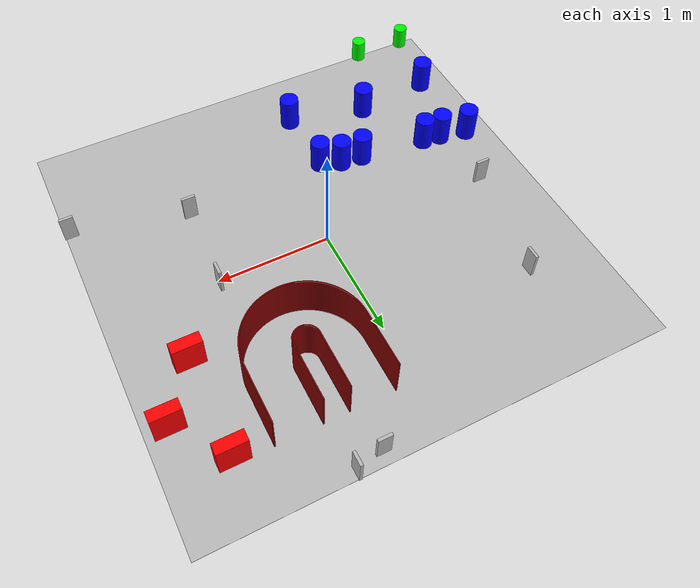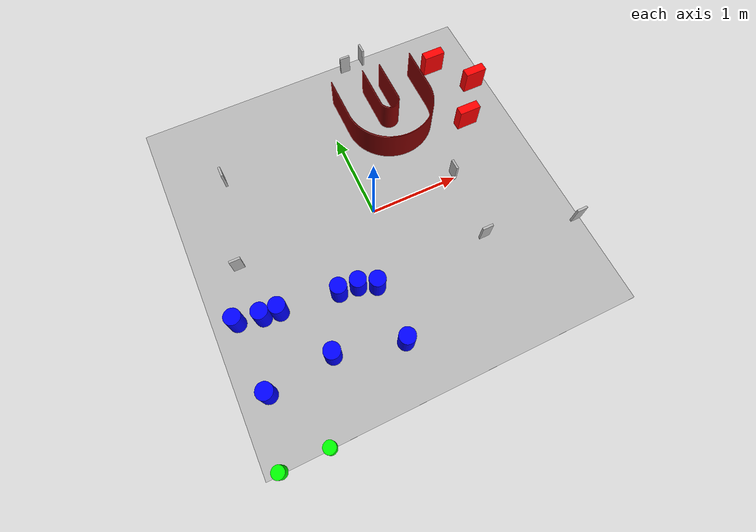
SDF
<sdf version="1.7">
 <world name="default">
  <scene>
   <ambient>0 0 0 1</ambient>
   <shadows>0</shadows>
   <grid>0</grid>
   <background>0.7 0.7 0.7 1</background>
  </scene>
  <model name="course">
   <static>1</static>
   <link name="course_link">
    <collision name="course_collision">
     <geometry><plane><normal>0 0 1</normal><size>4 4</size></plane></geometry>
     <surface><friction><ode><mu>100</mu><mu2>50</mu2></ode></friction></surface>
    </collision>
    <visual name="course_visual">
     <cast_shadows>0</cast_shadows>
     <geometry><plane><normal>0 0 1</normal><size>4 4</size></plane></geometry>
     <material>
      <script>
       <uri>model://course/materials/scripts</uri>
       <uri>model://course/materials/textures</uri>
       <name>course</name>
      </script>
     </material>
    </visual>
   </link>
   <pose>0 0 0 0 0 -3.14</pose>
  </model>
  <model name="traffic_parking">
   <static>1</static>
   <link name="box">
    <collision name="collision"><geometry><box><size>0.12 0.025 0.25</size></box></geometry></collision>
    <visual name="visual">
     <geometry><box><size>0.12 0.025 0.25</size></box></geometry>
     <material>
      <script>
       <uri>model://traffic_parking/materials/scripts</uri>
       <uri>model://traffic_parking/materials/textures</uri>
       <name>traffic_parking</name>
      </script>
     </material>
    </visual>
   </link>
   <pose>0.74 1.95 0.13 0 0 -1.57</pose>
  </model>
  <model name="traffic_tunnel">
   <pose>-1.544 0.006774 0.125 -2e-06 -5e-06 0.000138</pose>
   <link name="box">
    <collision name="collision"><geometry><box><size>0.12 0.025 0.25</size></box></geometry></collision>
    <visual name="visual">
     <geometry><box><size>0.12 0.025 0.25</size></box></geometry>
     <material>
      <script>
       <uri>model://traffic_tunnel/materials/scripts</uri>
       <uri>model://traffic_tunnel/materials/textures</uri>
       <name>traffic_tunnel</name>
      </script>
     </material>
    </visual>
    <inertial>
     <inertia><ixx>1</ixx><ixy>0</ixy><ixz>0</ixz><iyy>1</iyy><iyz>0</iyz><izz>1</izz></inertia>
     <mass>1</mass>
    </inertial>
   </link>
  </model>
  <model name="traffic_stop">
   <static>1</static>
   <link name="box">
    <collision name="collision"><geometry><box><size>0.12 0.025 0.25</size></box></geometry></collision>
    <visual name="visual">
     <geometry><box><size>0.12 0.025 0.25</size></box></geometry>
     <material>
      <script>
       <uri>model://traffic_stop/materials/scripts</uri>
       <uri>model://traffic_stop/materials/textures</uri>
       <name>traffic_stop</name>
      </script>
     </material>
    </visual>
   </link>
   <pose>-1.35 1.04 0.125 0 0 -1.57</pose>
  </model>
  <model name="traffic_pl_left">
   <static>1</static>
   <link name="box">
    <collision name="collision"><geometry><box><size>0.12 0.025 0.25</size></box></geometry></collision>
    <visual name="visual">
     <geometry><box><size>0.12 0.025 0.25</size></box></geometry>
     <material>
      <script>
       <uri>model://traffic_pl_left/materials/scripts</uri>
       <uri>model://traffic_pl_left/materials/textures</uri>
       <name>traffic_pl_left</name>
      </script>
     </material>
    </visual>
   </link>
   <pose>0.5 1.9 0.13 0 -0 0</pose>
  </model>
  <model name="traffic_construction">
   <static>1</static>
   <link name="box">
    <collision name="collision"><geometry><box><size>0.12 0.025 0.25</size></box></geometry></collision>
    <visual name="visual">
     <geometry><box><size>0.12 0.025 0.25</size></box></geometry>
     <material>
      <script>
       <uri>model://traffic_construction/materials/scripts</uri>
       <uri>model://traffic_construction/materials/textures</uri>
       <name>traffic_construction</name>
      </script>
     </material>
    </visual>
   </link>
   <pose>1 0.04 0.125 0 0 -1.57</pose>
  </model>
  <model name="traffic_intersection">
   <static>1</static>
   <link name="box">
    <collision name="collision"><geometry><box><size>0.12 0.025 0.25</size></box></geometry></collision>
    <visual name="visual">
     <geometry><box><size>0.12 0.025 0.25</size></box></geometry>
     <material>
      <script>
       <uri>model://traffic_intersection/materials/scripts</uri>
       <uri>model://traffic_intersection/materials/textures</uri>
       <name>traffic_intersection</name>
      </script>
     </material>
    </visual>
   </link>
   <pose>1.95 -1 0.125 0 -0 0</pose>
  </model>
  <model name="traffic_noentry">
   <static>1</static>
   <link name="box">
    <collision name="collision"><geometry><box><size>0.12 0.025 0.25</size></box></geometry></collision>
    <visual name="visual">
     <geometry><box><size>0.12 0.025 0.25</size></box></geometry>
     <material>
      <script>
       <uri>model://traffic_noentry/materials/scripts</uri>
       <uri>model://traffic_noentry/materials/textures</uri>
       <name>traffic_noentry</name>
      </script>
     </material>
    </visual>
   </link>
   <pose>0.95 -0.758 0.125 0 -0 0</pose>
  </model>
  <light name="sun" type="directional">
   <pose>0 0 10 0 -0 0</pose>
   <diffuse>0.8 0.8 0.8 1</diffuse>
   <specular>0.1 0.1 0.1 1</specular>
   <attenuation>
    <range>1000</range>
    <constant>0.9</constant>
    <linear>0.01</linear>
    <quadratic>0.001</quadratic>
   </attenuation>
   <direction>-0.5 0.5 -1</direction>
   <spot><inner_angle>0</inner_angle><outer_angle>0</outer_angle><falloff>0</falloff></spot>
  </light>
  <gravity>0 0 -9.8</gravity>
  <magnetic_field>6e-06 2.3e-05 -4.2e-05</magnetic_field>
  <atmosphere type="adiabatic"/>
  <physics name="default_physics" default="0" type="ode">
   <max_step_size>0.001</max_step_size>
   <real_time_factor>1</real_time_factor>
   <real_time_update_rate>1000</real_time_update_rate>
  </physics>
  <spherical_coordinates>
   <surface_model>EARTH_WGS84</surface_model>
   <latitude_deg>0</latitude_deg>
   <longitude_deg>0</longitude_deg>
   <elevation>0</elevation>
   <heading_deg>0</heading_deg>
  </spherical_coordinates>
  <light name="user_point_light_1" type="point">
   <pose>-1.64815 0.604519 1 0 -0 0</pose>
   <diffuse>0.5 0.5 0.5 1</diffuse>
   <specular>0.1 0.1 0.1 1</specular>
   <attenuation>
    <range>20</range>
    <constant>0.5</constant>
    <linear>0.01</linear>
    <quadratic>0.001</quadratic>
   </attenuation>
   <cast_shadows>0</cast_shadows>
   <direction>0 0 -1</direction>
   <spot><inner_angle>0</inner_angle><outer_angle>0</outer_angle><falloff>0</falloff></spot>
  </light>
  <light name="user_point_light_2" type="point">
   <pose>1.63854 1.69565 1 0 -0 0</pose>
   <diffuse>0.5 0.5 0.5 1</diffuse>
   <specular>0.1 0.1 0.1 1</specular>
   <attenuation>
    <range>20</range>
    <constant>0.5</constant>
    <linear>0.01</linear>
    <quadratic>0.001</quadratic>
   </attenuation>
   <cast_shadows>0</cast_shadows>
   <direction>0 0 -1</direction>
   <spot><inner_angle>0</inner_angle><outer_angle>0</outer_angle><falloff>0</falloff></spot>
  </light>
  <light name="user_point_light_3" type="point">
   <pose>0.42 -3.31 1 0 -0 0</pose>
   <diffuse>0.5 0.5 0.5 1</diffuse>
   <specular>0.1 0.1 0.1 1</specular>
   <attenuation>
    <range>20</range>
    <constant>0.5</constant>
    <linear>0.01</linear>
    <quadratic>0.001</quadratic>
   </attenuation>
   <cast_shadows>0</cast_shadows>
   <direction>0 0 -1</direction>
   <spot><inner_angle>0</inner_angle><outer_angle>0</outer_angle><falloff>0</falloff></spot>
  </light>
  <model name="tunnel">
   <link name="link_0">
    <inertial>
     <mass>1</mass>
     <inertia>
      <ixx>0.166667</ixx>
      <ixy>0</ixy>
      <ixz>0</ixz>
      <iyy>0.166667</iyy>
      <iyz>0</iyz>
      <izz>0.166667</izz>
     </inertia>
    </inertial>
    <gravity>0</gravity>
    <visual name="visual">
     <geometry><mesh><uri>model://tunnel.stl</uri><scale>1 1 1</scale></mesh></geometry>
     <material>
      <lighting>1</lighting>
      <script><uri>file://media/materials/scripts/gazebo.material</uri><name>Gazebo/Grey</name></script>
      <shader type="pixel"><normal_map>__default__</normal_map></shader>
      <ambient>0.5 0 0 1</ambient>
      <diffuse>0.5 0 0 1</diffuse>
      <specular>0.5 0 0 1</specular>
      <emissive>0.5 0 0 1</emissive>
     </material>
    </visual>
    <collision name="collision">
     <geometry><mesh><uri>model://tunnel.stl</uri><scale>1 1 1</scale></mesh></geometry>
     <surface>
      <friction>
       <ode><mu>1</mu><mu2>1</mu2><fdir1>0 0 0</fdir1><slip1>0</slip1><slip2>0</slip2></ode>
       <torsional>
        <coefficient>1</coefficient>
        <patch_radius>0</patch_radius>
        <surface_radius>0</surface_radius>
        <use_patch_radius>1</use_patch_radius>
        <ode><slip>0</slip></ode>
       </torsional>
      </friction>
      <bounce><restitution_coefficient>0</restitution_coefficient><threshold>1e+06</threshold></bounce>
      <contact>
       <collide_without_contact>0</collide_without_contact>
       <collide_without_contact_bitmask>1</collide_without_contact_bitmask>
       <collide_bitmask>1</collide_bitmask>
       <ode>
        <soft_cfm>0</soft_cfm>
        <soft_erp>0.2</soft_erp>
        <kp>1e+13</kp>
        <kd>1</kd>
        <max_vel>0.01</max_vel>
        <min_depth>0</min_depth>
       </ode>
       <bullet>
        <split_impulse>1</split_impulse>
        <split_impulse_penetration_threshold>-0.01</split_impulse_penetration_threshold>
        <soft_cfm>0</soft_cfm>
        <soft_erp>0.2</soft_erp>
        <kp>1e+13</kp>
        <kd>1</kd>
       </bullet>
      </contact>
     </surface>
    </collision>
   </link>
   <static>1</static>
   <pose>0.67559 1.51886 0 0 -0 3.14159</pose>
  </model>
  <model name="bouteille">
   <link name="link">
    <inertial>
     <mass>1</mass>
     <inertia><ixx>0.145833</ixx><ixy>0</ixy><ixz>0</ixz><iyy>0.145833</iyy><iyz>0</iyz><izz>0.125</izz></inertia>
    </inertial>
    <visual name="visual">
     <geometry><cylinder><radius>0.087</radius><length>0.31</length></cylinder></geometry>
     <material>
      <script><name>Gazebo/Grey</name><uri>file://media/materials/scripts/gazebo.material</uri></script>
      <shader type="pixel"><normal_map>__default__</normal_map></shader>
      <ambient>0 0 1 1</ambient>
      <diffuse>0 0 1 1</diffuse>
      <specular>0 0 0.9 1</specular>
      <emissive>0 0 0 1</emissive>
     </material>
    </visual>
    <collision name="collision">
     <geometry><cylinder><radius>0.087</radius><length>0.31</length></cylinder></geometry>
     <surface>
      <friction>
       <ode><mu>1</mu><mu2>1</mu2><fdir1>0 0 0</fdir1><slip1>0</slip1><slip2>0</slip2></ode>
       <torsional>
        <coefficient>1</coefficient>
        <patch_radius>0</patch_radius>
        <surface_radius>0</surface_radius>
        <use_patch_radius>1</use_patch_radius>
        <ode><slip>0</slip></ode>
       </torsional>
      </friction>
      <bounce><restitution_coefficient>0</restitution_coefficient><threshold>1e+06</threshold></bounce>
      <contact>
       <collide_without_contact>0</collide_without_contact>
       <collide_without_contact_bitmask>1</collide_without_contact_bitmask>
       <collide_bitmask>1</collide_bitmask>
       <ode>
        <soft_cfm>0</soft_cfm>
        <soft_erp>0.2</soft_erp>
        <kp>1e+13</kp>
        <kd>1</kd>
        <max_vel>0.01</max_vel>
        <min_depth>0</min_depth>
       </ode>
       <bullet>
        <split_impulse>1</split_impulse>
        <split_impulse_penetration_threshold>-0.01</split_impulse_penetration_threshold>
        <soft_cfm>0</soft_cfm>
        <soft_erp>0.2</soft_erp>
        <kp>1e+13</kp>
        <kd>1</kd>
       </bullet>
      </contact>
     </surface>
    </collision>
   </link>
   <static>0</static>
   <pose>-1.74796 -0.551286 0.155 0 -0 0</pose>
  </model>
  <model name="bouteille_clone">
   <link name="link">
    <inertial>
     <mass>1</mass>
     <inertia><ixx>0.145833</ixx><ixy>0</ixy><ixz>0</ixz><iyy>0.145833</iyy><iyz>0</iyz><izz>0.125</izz></inertia>
    </inertial>
    <visual name="visual">
     <geometry><cylinder><radius>0.087</radius><length>0.31</length></cylinder></geometry>
     <material>
      <script><name>Gazebo/Grey</name><uri>file://media/materials/scripts/gazebo.material</uri></script>
      <shader type="pixel"><normal_map>__default__</normal_map></shader>
      <ambient>0 0 1 1</ambient>
      <diffuse>0 0 1 1</diffuse>
      <specular>0 0 0.9 1</specular>
      <emissive>0 0 0 1</emissive>
     </material>
    </visual>
    <collision name="collision">
     <geometry><cylinder><radius>0.087</radius><length>0.31</length></cylinder></geometry>
     <surface>
      <friction>
       <ode><mu>1</mu><mu2>1</mu2><fdir1>0 0 0</fdir1><slip1>0</slip1><slip2>0</slip2></ode>
       <torsional>
        <coefficient>1</coefficient>
        <patch_radius>0</patch_radius>
        <surface_radius>0</surface_radius>
        <use_patch_radius>1</use_patch_radius>
        <ode><slip>0</slip></ode>
       </torsional>
      </friction>
      <bounce><restitution_coefficient>0</restitution_coefficient><threshold>1e+06</threshold></bounce>
      <contact>
       <collide_without_contact>0</collide_without_contact>
       <collide_without_contact_bitmask>1</collide_without_contact_bitmask>
       <collide_bitmask>1</collide_bitmask>
       <ode>
        <soft_cfm>0</soft_cfm>
        <soft_erp>0.2</soft_erp>
        <kp>1e+13</kp>
        <kd>1</kd>
        <max_vel>0.01</max_vel>
        <min_depth>0</min_depth>
       </ode>
       <bullet>
        <split_impulse>1</split_impulse>
        <split_impulse_penetration_threshold>-0.01</split_impulse_penetration_threshold>
        <soft_cfm>0</soft_cfm>
        <soft_erp>0.2</soft_erp>
        <kp>1e+13</kp>
        <kd>1</kd>
       </bullet>
      </contact>
     </surface>
    </collision>
   </link>
   <static>0</static>
   <pose>-1.49542 -0.605782 0.155 0 -0 0</pose>
  </model>
  <model name="bouteille_clone_clone">
   <link name="link">
    <inertial>
     <mass>1</mass>
     <inertia><ixx>0.145833</ixx><ixy>0</ixy><ixz>0</ixz><iyy>0.145833</iyy><iyz>0</iyz><izz>0.125</izz></inertia>
    </inertial>
    <visual name="visual">
     <geometry><cylinder><radius>0.087</radius><length>0.31</length></cylinder></geometry>
     <material>
      <script><name>Gazebo/Grey</name><uri>file://media/materials/scripts/gazebo.material</uri></script>
      <shader type="pixel"><normal_map>__default__</normal_map></shader>
      <ambient>0 0 1 1</ambient>
      <diffuse>0 0 1 1</diffuse>
      <specular>0 0 0.9 1</specular>
      <emissive>0 0 0 1</emissive>
     </material>
    </visual>
    <collision name="collision">
     <geometry><cylinder><radius>0.087</radius><length>0.31</length></cylinder></geometry>
     <surface>
      <friction>
       <ode><mu>1</mu><mu2>1</mu2><fdir1>0 0 0</fdir1><slip1>0</slip1><slip2>0</slip2></ode>
       <torsional>
        <coefficient>1</coefficient>
        <patch_radius>0</patch_radius>
        <surface_radius>0</surface_radius>
        <use_patch_radius>1</use_patch_radius>
        <ode><slip>0</slip></ode>
       </torsional>
      </friction>
      <bounce><restitution_coefficient>0</restitution_coefficient><threshold>1e+06</threshold></bounce>
      <contact>
       <collide_without_contact>0</collide_without_contact>
       <collide_without_contact_bitmask>1</collide_without_contact_bitmask>
       <collide_bitmask>1</collide_bitmask>
       <ode>
        <soft_cfm>0</soft_cfm>
        <soft_erp>0.2</soft_erp>
        <kp>1e+13</kp>
        <kd>1</kd>
        <max_vel>0.01</max_vel>
        <min_depth>0</min_depth>
       </ode>
       <bullet>
        <split_impulse>1</split_impulse>
        <split_impulse_penetration_threshold>-0.01</split_impulse_penetration_threshold>
        <soft_cfm>0</soft_cfm>
        <soft_erp>0.2</soft_erp>
        <kp>1e+13</kp>
        <kd>1</kd>
       </bullet>
      </contact>
     </surface>
    </collision>
   </link>
   <static>0</static>
   <pose>-1.32244 -0.624538 0.154991 0 -0 0</pose>
  </model>
  <model name="bouteille_clone_clone_clone">
   <link name="link">
    <inertial>
     <mass>1</mass>
     <inertia><ixx>0.145833</ixx><ixy>0</ixy><ixz>0</ixz><iyy>0.145833</iyy><iyz>0</iyz><izz>0.125</izz></inertia>
    </inertial>
    <visual name="visual">
     <geometry><cylinder><radius>0.087</radius><length>0.31</length></cylinder></geometry>
     <material>
      <script><name>Gazebo/Grey</name><uri>file://media/materials/scripts/gazebo.material</uri></script>
      <shader type="pixel"><normal_map>__default__</normal_map></shader>
      <ambient>0 0 1 1</ambient>
      <diffuse>0 0 1 1</diffuse>
      <specular>0 0 0.9 1</specular>
      <emissive>0 0 0 1</emissive>
     </material>
    </visual>
    <collision name="collision">
     <geometry><cylinder><radius>0.087</radius><length>0.31</length></cylinder></geometry>
     <surface>
      <friction>
       <ode><mu>1</mu><mu2>1</mu2><fdir1>0 0 0</fdir1><slip1>0</slip1><slip2>0</slip2></ode>
       <torsional>
        <coefficient>1</coefficient>
        <patch_radius>0</patch_radius>
        <surface_radius>0</surface_radius>
        <use_patch_radius>1</use_patch_radius>
        <ode><slip>0</slip></ode>
       </torsional>
      </friction>
      <bounce><restitution_coefficient>0</restitution_coefficient><threshold>1e+06</threshold></bounce>
      <contact>
       <collide_without_contact>0</collide_without_contact>
       <collide_without_contact_bitmask>1</collide_without_contact_bitmask>
       <collide_bitmask>1</collide_bitmask>
       <ode>
        <soft_cfm>0</soft_cfm>
        <soft_erp>0.2</soft_erp>
        <kp>1e+13</kp>
        <kd>1</kd>
        <max_vel>0.01</max_vel>
        <min_depth>0</min_depth>
       </ode>
       <bullet>
        <split_impulse>1</split_impulse>
        <split_impulse_penetration_threshold>-0.01</split_impulse_penetration_threshold>
        <soft_cfm>0</soft_cfm>
        <soft_erp>0.2</soft_erp>
        <kp>1e+13</kp>
        <kd>1</kd>
       </bullet>
      </contact>
     </surface>
    </collision>
   </link>
   <static>0</static>
   <pose>-0.50788 -0.718726 0.155 0 -0 0</pose>
  </model>
  <model name="bouteille_clone_clone_clone_0">
   <link name="link">
    <inertial>
     <mass>1</mass>
     <inertia><ixx>0.145833</ixx><ixy>0</ixy><ixz>0</ixz><iyy>0.145833</iyy><iyz>0</iyz><izz>0.125</izz></inertia>
    </inertial>
    <visual name="visual">
     <geometry><cylinder><radius>0.087</radius><length>0.31</length></cylinder></geometry>
     <material>
      <script><name>Gazebo/Grey</name><uri>file://media/materials/scripts/gazebo.material</uri></script>
      <shader type="pixel"><normal_map>__default__</normal_map></shader>
      <ambient>0 0 1 1</ambient>
      <diffuse>0 0 1 1</diffuse>
      <specular>0 0 0.9 1</specular>
      <emissive>0 0 0 1</emissive>
     </material>
    </visual>
    <collision name="collision">
     <geometry><cylinder><radius>0.087</radius><length>0.31</length></cylinder></geometry>
     <surface>
      <friction>
       <ode><mu>1</mu><mu2>1</mu2><fdir1>0 0 0</fdir1><slip1>0</slip1><slip2>0</slip2></ode>
       <torsional>
        <coefficient>1</coefficient>
        <patch_radius>0</patch_radius>
        <surface_radius>0</surface_radius>
        <use_patch_radius>1</use_patch_radius>
        <ode><slip>0</slip></ode>
       </torsional>
      </friction>
      <bounce><restitution_coefficient>0</restitution_coefficient><threshold>1e+06</threshold></bounce>
      <contact>
       <collide_without_contact>0</collide_without_contact>
       <collide_without_contact_bitmask>1</collide_without_contact_bitmask>
       <collide_bitmask>1</collide_bitmask>
       <ode>
        <soft_cfm>0</soft_cfm>
        <soft_erp>0.2</soft_erp>
        <kp>1e+13</kp>
        <kd>1</kd>
        <max_vel>0.01</max_vel>
        <min_depth>0</min_depth>
       </ode>
       <bullet>
        <split_impulse>1</split_impulse>
        <split_impulse_penetration_threshold>-0.01</split_impulse_penetration_threshold>
        <soft_cfm>0</soft_cfm>
        <soft_erp>0.2</soft_erp>
        <kp>1e+13</kp>
        <kd>1</kd>
       </bullet>
      </contact>
     </surface>
    </collision>
   </link>
   <static>0</static>
   <pose>-0.329241 -0.794717 0.155 0 -0 0</pose>
  </model>
  <model name="bouteille_clone_clone_clone_1">
   <link name="link">
    <inertial>
     <mass>1</mass>
     <inertia><ixx>0.145833</ixx><ixy>0</ixy><ixz>0</ixz><iyy>0.145833</iyy><iyz>0</iyz><izz>0.125</izz></inertia>
    </inertial>
    <visual name="visual">
     <geometry><cylinder><radius>0.087</radius><length>0.31</length></cylinder></geometry>
     <material>
      <script><name>Gazebo/Grey</name><uri>file://media/materials/scripts/gazebo.material</uri></script>
      <shader type="pixel"><normal_map>__default__</normal_map></shader>
      <ambient>0 0 1 1</ambient>
      <diffuse>0 0 1 1</diffuse>
      <specular>0 0 0.9 1</specular>
      <emissive>0 0 0 1</emissive>
     </material>
    </visual>
    <collision name="collision">
     <geometry><cylinder><radius>0.087</radius><length>0.31</length></cylinder></geometry>
     <surface>
      <friction>
       <ode><mu>1</mu><mu2>1</mu2><fdir1>0 0 0</fdir1><slip1>0</slip1><slip2>0</slip2></ode>
       <torsional>
        <coefficient>1</coefficient>
        <patch_radius>0</patch_radius>
        <surface_radius>0</surface_radius>
        <use_patch_radius>1</use_patch_radius>
        <ode><slip>0</slip></ode>
       </torsional>
      </friction>
      <bounce><restitution_coefficient>0</restitution_coefficient><threshold>1e+06</threshold></bounce>
      <contact>
       <collide_without_contact>0</collide_without_contact>
       <collide_without_contact_bitmask>1</collide_without_contact_bitmask>
       <collide_bitmask>1</collide_bitmask>
       <ode>
        <soft_cfm>0</soft_cfm>
        <soft_erp>0.2</soft_erp>
        <kp>1e+13</kp>
        <kd>1</kd>
        <max_vel>0.01</max_vel>
        <min_depth>0</min_depth>
       </ode>
       <bullet>
        <split_impulse>1</split_impulse>
        <split_impulse_penetration_threshold>-0.01</split_impulse_penetration_threshold>
        <soft_cfm>0</soft_cfm>
        <soft_erp>0.2</soft_erp>
        <kp>1e+13</kp>
        <kd>1</kd>
       </bullet>
      </contact>
     </surface>
    </collision>
   </link>
   <static>0</static>
   <pose>-1.01124 -1.24558 0.155 0 -0 0</pose>
  </model>
  <model name="bouteille_clone_clone_clone_2">
   <link name="link">
    <inertial>
     <mass>1</mass>
     <inertia><ixx>0.145833</ixx><ixy>0</ixy><ixz>0</ixz><iyy>0.145833</iyy><iyz>0</iyz><izz>0.125</izz></inertia>
    </inertial>
    <visual name="visual">
     <geometry><cylinder><radius>0.087</radius><length>0.31</length></cylinder></geometry>
     <material>
      <script><name>Gazebo/Grey</name><uri>file://media/materials/scripts/gazebo.material</uri></script>
      <shader type="pixel"><normal_map>__default__</normal_map></shader>
      <ambient>0 0 1 1</ambient>
      <diffuse>0 0 1 1</diffuse>
      <specular>0 0 0.9 1</specular>
      <emissive>0 0 0 1</emissive>
     </material>
    </visual>
    <collision name="collision">
     <geometry><cylinder><radius>0.087</radius><length>0.31</length></cylinder></geometry>
     <surface>
      <friction>
       <ode><mu>1</mu><mu2>1</mu2><fdir1>0 0 0</fdir1><slip1>0</slip1><slip2>0</slip2></ode>
       <torsional>
        <coefficient>1</coefficient>
        <patch_radius>0</patch_radius>
        <surface_radius>0</surface_radius>
        <use_patch_radius>1</use_patch_radius>
        <ode><slip>0</slip></ode>
       </torsional>
      </friction>
      <bounce><restitution_coefficient>0</restitution_coefficient><threshold>1e+06</threshold></bounce>
      <contact>
       <collide_without_contact>0</collide_without_contact>
       <collide_without_contact_bitmask>1</collide_without_contact_bitmask>
       <collide_bitmask>1</collide_bitmask>
       <ode>
        <soft_cfm>0</soft_cfm>
        <soft_erp>0.2</soft_erp>
        <kp>1e+13</kp>
        <kd>1</kd>
        <max_vel>0.01</max_vel>
        <min_depth>0</min_depth>
       </ode>
       <bullet>
        <split_impulse>1</split_impulse>
        <split_impulse_penetration_threshold>-0.01</split_impulse_penetration_threshold>
        <soft_cfm>0</soft_cfm>
        <soft_erp>0.2</soft_erp>
        <kp>1e+13</kp>
        <kd>1</kd>
       </bullet>
      </contact>
     </surface>
    </collision>
   </link>
   <static>0</static>
   <pose>-0.313301 -1.42037 0.155 0 -0 0</pose>
  </model>
  <model name="bouteille_clone_clone_clone_3">
   <link name="link">
    <inertial>
     <mass>1</mass>
     <inertia><ixx>0.145833</ixx><ixy>0</ixy><ixz>0</ixz><iyy>0.145833</iyy><iyz>0</iyz><izz>0.125</izz></inertia>
    </inertial>
    <visual name="visual">
     <geometry><cylinder><radius>0.087</radius><length>0.31</length></cylinder></geometry>
     <material>
      <script><name>Gazebo/Grey</name><uri>file://media/materials/scripts/gazebo.material</uri></script>
      <shader type="pixel"><normal_map>__default__</normal_map></shader>
      <ambient>0 0 1 1</ambient>
      <diffuse>0 0 1 1</diffuse>
      <specular>0 0 0.9 1</specular>
      <emissive>0 0 0 1</emissive>
     </material>
    </visual>
    <collision name="collision">
     <geometry><cylinder><radius>0.087</radius><length>0.31</length></cylinder></geometry>
     <surface>
      <friction>
       <ode><mu>1</mu><mu2>1</mu2><fdir1>0 0 0</fdir1><slip1>0</slip1><slip2>0</slip2></ode>
       <torsional>
        <coefficient>1</coefficient>
        <patch_radius>0</patch_radius>
        <surface_radius>0</surface_radius>
        <use_patch_radius>1</use_patch_radius>
        <ode><slip>0</slip></ode>
       </torsional>
      </friction>
      <bounce><restitution_coefficient>0</restitution_coefficient><threshold>1e+06</threshold></bounce>
      <contact>
       <collide_without_contact>0</collide_without_contact>
       <collide_without_contact_bitmask>1</collide_without_contact_bitmask>
       <collide_bitmask>1</collide_bitmask>
       <ode>
        <soft_cfm>0</soft_cfm>
        <soft_erp>0.2</soft_erp>
        <kp>1e+13</kp>
        <kd>1</kd>
        <max_vel>0.01</max_vel>
        <min_depth>0</min_depth>
       </ode>
       <bullet>
        <split_impulse>1</split_impulse>
        <split_impulse_penetration_threshold>-0.01</split_impulse_penetration_threshold>
        <soft_cfm>0</soft_cfm>
        <soft_erp>0.2</soft_erp>
        <kp>1e+13</kp>
        <kd>1</kd>
       </bullet>
      </contact>
     </surface>
    </collision>
   </link>
   <static>0</static>
   <pose>-1.70559 -1.31929 0.155 0 -0 0</pose>
  </model>
  <model name="bouteille_clone_clone_clone_clone">
   <link name="link">
    <inertial>
     <mass>1</mass>
     <inertia><ixx>0.145833</ixx><ixy>0</ixy><ixz>0</ixz><iyy>0.145833</iyy><iyz>0</iyz><izz>0.125</izz></inertia>
    </inertial>
    <visual name="visual">
     <geometry><cylinder><radius>0.087</radius><length>0.31</length></cylinder></geometry>
     <material>
      <script><name>Gazebo/Grey</name><uri>file://media/materials/scripts/gazebo.material</uri></script>
      <shader type="pixel"><normal_map>__default__</normal_map></shader>
      <ambient>0 0 1 1</ambient>
      <diffuse>0 0 1 1</diffuse>
      <specular>0 0 0.9 1</specular>
      <emissive>0 0 0 1</emissive>
     </material>
    </visual>
    <collision name="collision">
     <geometry><cylinder><radius>0.087</radius><length>0.31</length></cylinder></geometry>
     <surface>
      <friction>
       <ode><mu>1</mu><mu2>1</mu2><fdir1>0 0 0</fdir1><slip1>0</slip1><slip2>0</slip2></ode>
       <torsional>
        <coefficient>1</coefficient>
        <patch_radius>0</patch_radius>
        <surface_radius>0</surface_radius>
        <use_patch_radius>1</use_patch_radius>
        <ode><slip>0</slip></ode>
       </torsional>
      </friction>
      <bounce><restitution_coefficient>0</restitution_coefficient><threshold>1e+06</threshold></bounce>
      <contact>
       <collide_without_contact>0</collide_without_contact>
       <collide_without_contact_bitmask>1</collide_without_contact_bitmask>
       <collide_bitmask>1</collide_bitmask>
       <ode>
        <soft_cfm>0</soft_cfm>
        <soft_erp>0.2</soft_erp>
        <kp>1e+13</kp>
        <kd>1</kd>
        <max_vel>0.01</max_vel>
        <min_depth>0</min_depth>
       </ode>
       <bullet>
        <split_impulse>1</split_impulse>
        <split_impulse_penetration_threshold>-0.01</split_impulse_penetration_threshold>
        <soft_cfm>0</soft_cfm>
        <soft_erp>0.2</soft_erp>
        <kp>1e+13</kp>
        <kd>1</kd>
       </bullet>
      </contact>
     </surface>
    </collision>
   </link>
   <static>0</static>
   <pose>-0.708912 -0.696972 0.155 0 -0 0</pose>
  </model>
  <model name="petite_bouteille">
   <link name="link_0">
    <inertial>
     <mass>1</mass>
     <inertia><ixx>0.145833</ixx><ixy>0</ixy><ixz>0</ixz><iyy>0.145833</iyy><iyz>0</iyz><izz>0.125</izz></inertia>
    </inertial>
    <visual name="visual">
     <geometry><cylinder><radius>0.064</radius><length>0.209</length></cylinder></geometry>
     <material>
      <lighting>1</lighting>
      <script><uri>file://media/materials/scripts/gazebo.material</uri><name>Gazebo/Grey</name></script>
      <shader type="pixel"><normal_map>__default__</normal_map></shader>
      <ambient>0 1 0 1</ambient>
      <diffuse>0 1 0 1</diffuse>
      <specular>0 1 0 1</specular>
      <emissive>0 0.5 0 1</emissive>
     </material>
    </visual>
    <collision name="collision">
     <geometry><cylinder><radius>0.064</radius><length>0.209</length></cylinder></geometry>
     <surface>
      <friction>
       <ode><mu>1</mu><mu2>1</mu2><fdir1>0 0 0</fdir1><slip1>0</slip1><slip2>0</slip2></ode>
       <torsional>
        <coefficient>1</coefficient>
        <patch_radius>0</patch_radius>
        <surface_radius>0</surface_radius>
        <use_patch_radius>1</use_patch_radius>
        <ode><slip>0</slip></ode>
       </torsional>
      </friction>
      <bounce><restitution_coefficient>0</restitution_coefficient><threshold>1e+06</threshold></bounce>
      <contact>
       <collide_without_contact>0</collide_without_contact>
       <collide_without_contact_bitmask>1</collide_without_contact_bitmask>
       <collide_bitmask>1</collide_bitmask>
       <ode>
        <soft_cfm>0</soft_cfm>
        <soft_erp>0.2</soft_erp>
        <kp>1e+13</kp>
        <kd>1</kd>
        <max_vel>0.01</max_vel>
        <min_depth>0</min_depth>
       </ode>
       <bullet>
        <split_impulse>1</split_impulse>
        <split_impulse_penetration_threshold>-0.01</split_impulse_penetration_threshold>
        <soft_cfm>0</soft_cfm>
        <soft_erp>0.2</soft_erp>
        <kp>1e+13</kp>
        <kd>1</kd>
       </bullet>
      </contact>
     </surface>
    </collision>
   </link>
   <static>0</static>
   <pose>-1.84318 -1.98537 0.1045 0 -0 0</pose>
  </model>
  <model name="petite_bouteille_clone">
   <link name="link_0">
    <inertial>
     <mass>1</mass>
     <inertia><ixx>0.145833</ixx><ixy>0</ixy><ixz>0</ixz><iyy>0.145833</iyy><iyz>0</iyz><izz>0.125</izz></inertia>
    </inertial>
    <visual name="visual">
     <geometry><cylinder><radius>0.064</radius><length>0.209</length></cylinder></geometry>
     <material>
      <lighting>1</lighting>
      <script><uri>file://media/materials/scripts/gazebo.material</uri><name>Gazebo/Grey</name></script>
      <shader type="pixel"><normal_map>__default__</normal_map></shader>
      <ambient>0 1 0 1</ambient>
      <diffuse>0 1 0 1</diffuse>
      <specular>0 1 0 1</specular>
      <emissive>0 0.5 0 1</emissive>
     </material>
    </visual>
    <collision name="collision">
     <geometry><cylinder><radius>0.064</radius><length>0.209</length></cylinder></geometry>
     <surface>
      <friction>
       <ode><mu>1</mu><mu2>1</mu2><fdir1>0 0 0</fdir1><slip1>0</slip1><slip2>0</slip2></ode>
       <torsional>
        <coefficient>1</coefficient>
        <patch_radius>0</patch_radius>
        <surface_radius>0</surface_radius>
        <use_patch_radius>1</use_patch_radius>
        <ode><slip>0</slip></ode>
       </torsional>
      </friction>
      <bounce><restitution_coefficient>0</restitution_coefficient><threshold>1e+06</threshold></bounce>
      <contact>
       <collide_without_contact>0</collide_without_contact>
       <collide_without_contact_bitmask>1</collide_without_contact_bitmask>
       <collide_bitmask>1</collide_bitmask>
       <ode>
        <soft_cfm>0</soft_cfm>
        <soft_erp>0.2</soft_erp>
        <kp>1e+13</kp>
        <kd>1</kd>
        <max_vel>0.01</max_vel>
        <min_depth>0</min_depth>
       </ode>
       <bullet>
        <split_impulse>1</split_impulse>
        <split_impulse_penetration_threshold>-0.01</split_impulse_penetration_threshold>
        <soft_cfm>0</soft_cfm>
        <soft_erp>0.2</soft_erp>
        <kp>1e+13</kp>
        <kd>1</kd>
       </bullet>
      </contact>
     </surface>
    </collision>
   </link>
   <static>0</static>
   <pose>-1.35967 -1.99104 0.1045 0 -0 0</pose>
  </model>
  <model name="barrier_1">
   <link name="link">
    <inertial>
     <mass>1</mass>
     <inertia>
      <ixx>0.166667</ixx>
      <ixy>0</ixy>
      <ixz>0</ixz>
      <iyy>0.166667</iyy>
      <iyz>0</iyz>
      <izz>0.166667</izz>
     </inertia>
    </inertial>
    <visual name="visual">
     <geometry><box><size>0.25 0.1 0.3</size></box></geometry>
     <material>
      <script><name>Gazebo/Grey</name><uri>file://media/materials/scripts/gazebo.material</uri></script>
      <shader type="pixel"><normal_map>__default__</normal_map></shader>
      <ambient>1 0 0 1</ambient>
      <diffuse>1 0 0 1</diffuse>
      <specular>0.01 0.01 0 1</specular>
      <emissive>0 0 0 1</emissive>
     </material>
    </visual>
    <collision name="collision">
     <geometry><box><size>0.25 0.1 0.3</size></box></geometry>
     <surface>
      <friction>
       <ode><mu>1</mu><mu2>1</mu2><fdir1>0 0 0</fdir1><slip1>0</slip1><slip2>0</slip2></ode>
       <torsional>
        <coefficient>1</coefficient>
        <patch_radius>0</patch_radius>
        <surface_radius>0</surface_radius>
        <use_patch_radius>1</use_patch_radius>
        <ode><slip>0</slip></ode>
       </torsional>
      </friction>
      <bounce><restitution_coefficient>0</restitution_coefficient><threshold>1e+06</threshold></bounce>
      <contact>
       <collide_without_contact>0</collide_without_contact>
       <collide_without_contact_bitmask>1</collide_without_contact_bitmask>
       <collide_bitmask>1</collide_bitmask>
       <ode>
        <soft_cfm>0</soft_cfm>
        <soft_erp>0.2</soft_erp>
        <kp>1e+13</kp>
        <kd>1</kd>
        <max_vel>0.01</max_vel>
        <min_depth>0</min_depth>
       </ode>
       <bullet>
        <split_impulse>1</split_impulse>
        <split_impulse_penetration_threshold>-0.01</split_impulse_penetration_threshold>
        <soft_cfm>0</soft_cfm>
        <soft_erp>0.2</soft_erp>
        <kp>1e+13</kp>
        <kd>1</kd>
       </bullet>
      </contact>
     </surface>
    </collision>
   </link>
   <static>0</static>
   <pose>1.47645 0.604202 0.151023 0 -0 0</pose>
  </model>
  <model name="barrier_1_clone">
   <link name="link">
    <inertial>
     <mass>1</mass>
     <inertia>
      <ixx>0.166667</ixx>
      <ixy>0</ixy>
      <ixz>0</ixz>
      <iyy>0.166667</iyy>
      <iyz>0</iyz>
      <izz>0.166667</izz>
     </inertia>
    </inertial>
    <visual name="visual">
     <geometry><box><size>0.25 0.1 0.3</size></box></geometry>
     <material>
      <script><name>Gazebo/Grey</name><uri>file://media/materials/scripts/gazebo.material</uri></script>
      <shader type="pixel"><normal_map>__default__</normal_map></shader>
      <ambient>1 0 0 1</ambient>
      <diffuse>1 0 0 1</diffuse>
      <specular>0.01 0.01 0 1</specular>
      <emissive>0 0 0 1</emissive>
     </material>
    </visual>
    <collision name="collision">
     <geometry><box><size>0.25 0.1 0.3</size></box></geometry>
     <surface>
      <friction>
       <ode><mu>1</mu><mu2>1</mu2><fdir1>0 0 0</fdir1><slip1>0</slip1><slip2>0</slip2></ode>
       <torsional>
        <coefficient>1</coefficient>
        <patch_radius>0</patch_radius>
        <surface_radius>0</surface_radius>
        <use_patch_radius>1</use_patch_radius>
        <ode><slip>0</slip></ode>
       </torsional>
      </friction>
      <bounce><restitution_coefficient>0</restitution_coefficient><threshold>1e+06</threshold></bounce>
      <contact>
       <collide_without_contact>0</collide_without_contact>
       <collide_without_contact_bitmask>1</collide_without_contact_bitmask>
       <collide_bitmask>1</collide_bitmask>
       <ode>
        <soft_cfm>0</soft_cfm>
        <soft_erp>0.2</soft_erp>
        <kp>1e+13</kp>
        <kd>1</kd>
        <max_vel>0.01</max_vel>
        <min_depth>0</min_depth>
       </ode>
       <bullet>
        <split_impulse>1</split_impulse>
        <split_impulse_penetration_threshold>-0.01</split_impulse_penetration_threshold>
        <soft_cfm>0</soft_cfm>
        <soft_erp>0.2</soft_erp>
        <kp>1e+13</kp>
        <kd>1</kd>
       </bullet>
      </contact>
     </surface>
    </collision>
   </link>
   <static>0</static>
   <pose>1.8043 1.04869 0.151023 0 -0 0</pose>
  </model>
  <model name="barrier_1_clone_clone">
   <link name="link">
    <inertial>
     <mass>1</mass>
     <inertia>
      <ixx>0.166667</ixx>
      <ixy>0</ixy>
      <ixz>0</ixz>
      <iyy>0.166667</iyy>
      <iyz>0</iyz>
      <izz>0.166667</izz>
     </inertia>
    </inertial>
    <visual name="visual">
     <geometry><box><size>0.25 0.1 0.3</size></box></geometry>
     <material>
      <script><name>Gazebo/Grey</name><uri>file://media/materials/scripts/gazebo.material</uri></script>
      <shader type="pixel"><normal_map>__default__</normal_map></shader>
      <ambient>1 0 0 1</ambient>
      <diffuse>1 0 0 1</diffuse>
      <specular>0.01 0.01 0 1</specular>
      <emissive>0 0 0 1</emissive>
     </material>
    </visual>
    <collision name="collision">
     <geometry><box><size>0.25 0.1 0.3</size></box></geometry>
     <surface>
      <friction>
       <ode><mu>1</mu><mu2>1</mu2><fdir1>0 0 0</fdir1><slip1>0</slip1><slip2>0</slip2></ode>
       <torsional>
        <coefficient>1</coefficient>
        <patch_radius>0</patch_radius>
        <surface_radius>0</surface_radius>
        <use_patch_radius>1</use_patch_radius>
        <ode><slip>0</slip></ode>
       </torsional>
      </friction>
      <bounce><restitution_coefficient>0</restitution_coefficient><threshold>1e+06</threshold></bounce>
      <contact>
       <collide_without_contact>0</collide_without_contact>
       <collide_without_contact_bitmask>1</collide_without_contact_bitmask>
       <collide_bitmask>1</collide_bitmask>
       <ode>
        <soft_cfm>0</soft_cfm>
        <soft_erp>0.2</soft_erp>
        <kp>1e+13</kp>
        <kd>1</kd>
        <max_vel>0.01</max_vel>
        <min_depth>0</min_depth>
       </ode>
       <bullet>
        <split_impulse>1</split_impulse>
        <split_impulse_penetration_threshold>-0.01</split_impulse_penetration_threshold>
        <soft_cfm>0</soft_cfm>
        <soft_erp>0.2</soft_erp>
        <kp>1e+13</kp>
        <kd>1</kd>
       </bullet>
      </contact>
     </surface>
    </collision>
   </link>
   <static>0</static>
   <pose>1.47687 1.47314 0.151023 0 -0 0</pose>
  </model>
 </world>
</sdf>
